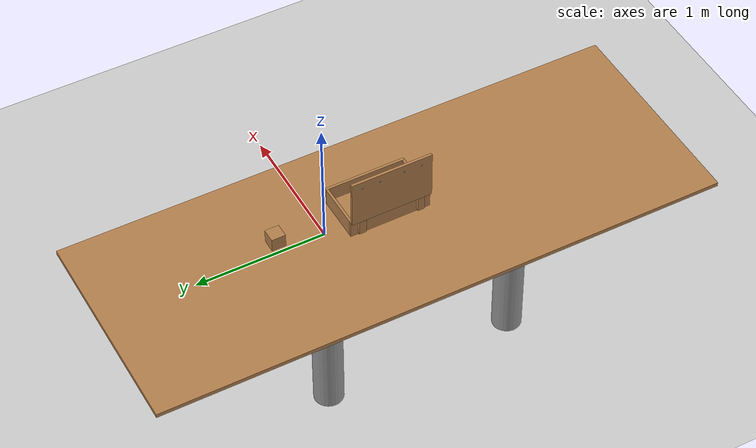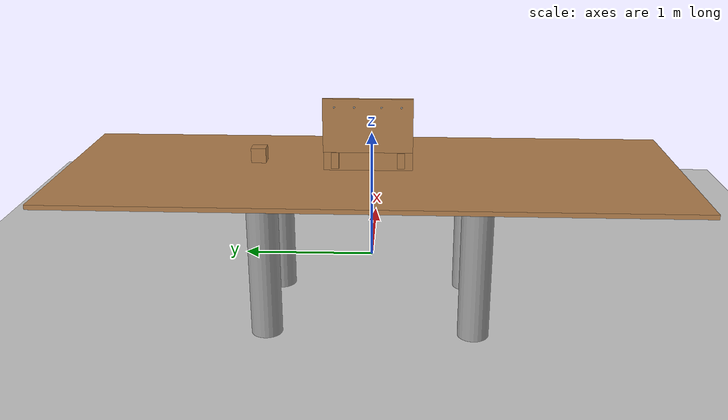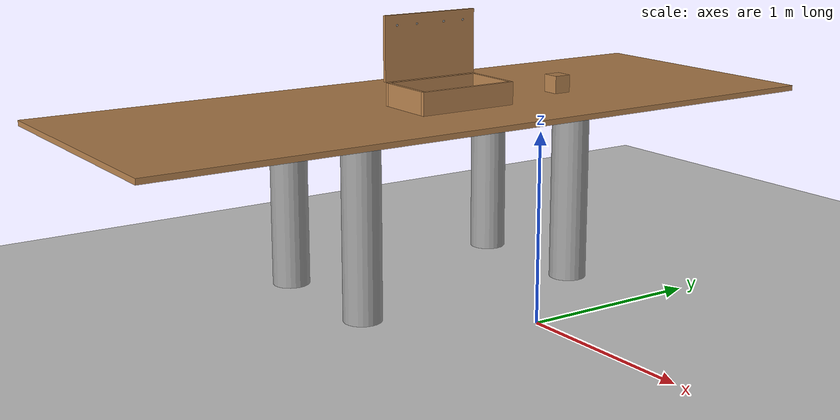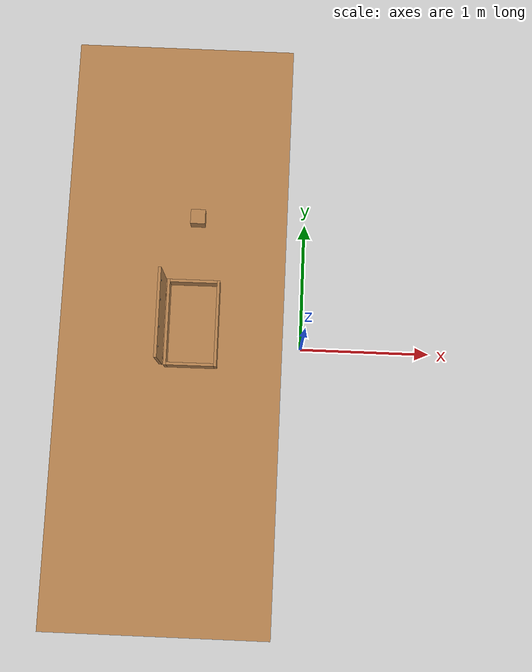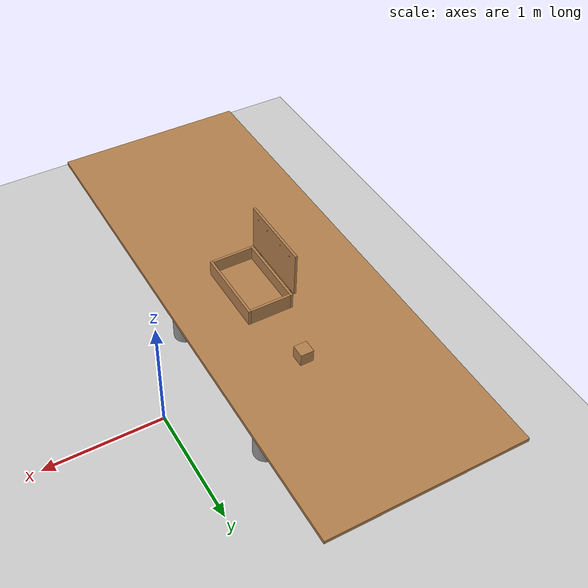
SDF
<sdf version="1.6">
 <world name="default">
  <scene><ambient>0.6 0.6 0.6 1</ambient><background>0.25 0.25 0.25 1</background><shadows>0</shadows></scene>
  <light name="sun" type="directional">
   <pose>0 0 10 0 -0 0</pose>
   <diffuse>0.8 0.8 0.8 1</diffuse>
   <specular>0.2 0.2 0.2 1</specular>
   <attenuation>
    <range>1000</range>
    <constant>0.9</constant>
    <linear>0.01</linear>
    <quadratic>0.001</quadratic>
   </attenuation>
   <direction>-0.5 0.1 -0.9</direction>
  </light>
  <model name="ground_plane">
   <static>1</static>
   <link name="link">
    <collision name="collision">
     <geometry><plane><normal>0 0 1</normal><size>100 100</size></plane></geometry>
     <surface>
      <contact><collide_bitmask>65535</collide_bitmask></contact>
      <friction><ode><mu>100</mu><mu2>50</mu2></ode></friction>
     </surface>
    </collision>
    <visual name="visual">
     <cast_shadows>0</cast_shadows>
     <geometry><plane><normal>0 0 1</normal><size>100 100</size></plane></geometry>
     <material>
      <script><uri>file://media/materials/scripts/gazebo.material</uri><name>Gazebo/Grey</name></script>
     </material>
    </visual>
   </link>
  </model>
  <gravity>0 0 -9.8</gravity>
  <physics name="default_physics" default="0" type="ode">
   <real_time_update_rate>5000</real_time_update_rate>
   <max_step_size>0.001</max_step_size>
   <real_time_factor>1</real_time_factor>
   <ode>
    <solver>
     <type>quick</type>
     <iters>150</iters>
     <precon_iters>0</precon_iters>
     <sor>1.4</sor>
     <use_dynamic_moi_rescaling>1</use_dynamic_moi_rescaling>
    </solver>
    <constraints>
     <cfm>1e-05</cfm>
     <erp>0.2</erp>
     <contact_max_correcting_vel>2000</contact_max_correcting_vel>
     <contact_surface_layer>0.01</contact_surface_layer>
    </constraints>
   </ode>
  </physics>
  <scene><ambient>0.4 0.4 0.4 1</ambient><background>0.7 0.7 0.7 1</background><shadows>1</shadows></scene>
  <magnetic_field>6e-06 2.3e-05 -4.2e-05</magnetic_field>
  <atmosphere type="adiabatic"/>
  <audio><device>default</device></audio>
  <spherical_coordinates>
   <surface_model>EARTH_WGS84</surface_model>
   <latitude_deg>0</latitude_deg>
   <longitude_deg>0</longitude_deg>
   <elevation>0</elevation>
   <heading_deg>0</heading_deg>
  </spherical_coordinates>
  <model name="table">
   <link name="link">
    <inertial>
     <inertia><ixx>0</ixx><ixy>0</ixy><ixz>0</ixz><iyy>0</iyy><iyz>0</iyz><izz>0</izz></inertia>
     <mass>0</mass>
    </inertial>
    <pose>-1.13775 0.614597 0 0 -0 0</pose>
    <visual name="visual1">
     <pose>0 0 1 0 -0 0</pose>
     <geometry><box><size>4.06235 1.52268 0.03</size></box></geometry>
     <material>
      <script><uri>file://media/materials/scripts/gazebo.material</uri><name>Gazebo/Wood</name></script>
     </material>
    </visual>
    <visual name="back_left_leg">
     <pose>-0.68 0.38 0.5 0 -0 0</pose>
     <geometry><cylinder><radius>0.102749</radius><length>1</length></cylinder></geometry>
     <material>
      <script><uri>file://media/materials/scripts/gazebo.material</uri><name>Gazebo/Grey</name></script>
     </material>
    </visual>
    <visual name="front_left_leg">
     <pose>0.68 0.38 0.5 0 -0 0</pose>
     <geometry><cylinder><radius>0.102749</radius><length>1</length></cylinder></geometry>
     <material>
      <script><uri>file://media/materials/scripts/gazebo.material</uri><name>Gazebo/Grey</name></script>
     </material>
    </visual>
    <visual name="front_right_leg">
     <pose>0.68 -0.38 0.5 0 -0 0</pose>
     <geometry><cylinder><radius>0.102749</radius><length>1</length></cylinder></geometry>
     <material>
      <script><uri>file://media/materials/scripts/gazebo.material</uri><name>Gazebo/Grey</name></script>
     </material>
    </visual>
    <visual name="back_right_leg">
     <pose>-0.68 -0.38 0.5 0 -0 0</pose>
     <geometry><cylinder><radius>0.102749</radius><length>1</length></cylinder></geometry>
     <material>
      <script><uri>file://media/materials/scripts/gazebo.material</uri><name>Gazebo/Grey</name></script>
     </material>
    </visual>
    <collision name="surface">
     <pose>0 0 1 0 -0 0</pose>
     <geometry><box><size>4.06235 1.52268 0.03</size></box></geometry>
     <surface>
      <friction>
       <ode><mu>0.6</mu><mu2>0.6</mu2><fdir1>0 0 0</fdir1><slip1>0</slip1><slip2>0</slip2></ode>
       <torsional>
        <coefficient>1</coefficient>
        <patch_radius>0</patch_radius>
        <surface_radius>0</surface_radius>
        <use_patch_radius>1</use_patch_radius>
        <ode><slip>0</slip></ode>
       </torsional>
      </friction>
      <bounce><restitution_coefficient>0</restitution_coefficient><threshold>1e+06</threshold></bounce>
      <contact>
       <collide_without_contact>0</collide_without_contact>
       <collide_without_contact_bitmask>1</collide_without_contact_bitmask>
       <collide_bitmask>1</collide_bitmask>
       <ode>
        <soft_cfm>0</soft_cfm>
        <soft_erp>0.2</soft_erp>
        <kp>1e+13</kp>
        <kd>1</kd>
        <max_vel>0.01</max_vel>
        <min_depth>0</min_depth>
       </ode>
       <bullet>
        <split_impulse>1</split_impulse>
        <split_impulse_penetration_threshold>-0.01</split_impulse_penetration_threshold>
        <soft_cfm>0</soft_cfm>
        <soft_erp>0.2</soft_erp>
        <kp>1e+13</kp>
        <kd>1</kd>
       </bullet>
      </contact>
     </surface>
    </collision>
    <collision name="front_left_leg">
     <pose>0.68 0.38 0.5 0 -0 0</pose>
     <geometry><cylinder><radius>0.102749</radius><length>1</length></cylinder></geometry>
     <surface>
      <friction>
       <ode><mu>1</mu><mu2>1</mu2><fdir1>0 0 0</fdir1><slip1>0</slip1><slip2>0</slip2></ode>
       <torsional>
        <coefficient>1</coefficient>
        <patch_radius>0</patch_radius>
        <surface_radius>0</surface_radius>
        <use_patch_radius>1</use_patch_radius>
        <ode><slip>0</slip></ode>
       </torsional>
      </friction>
      <bounce><restitution_coefficient>0</restitution_coefficient><threshold>1e+06</threshold></bounce>
      <contact>
       <collide_without_contact>0</collide_without_contact>
       <collide_without_contact_bitmask>1</collide_without_contact_bitmask>
       <collide_bitmask>1</collide_bitmask>
       <ode>
        <soft_cfm>0</soft_cfm>
        <soft_erp>0.2</soft_erp>
        <kp>1e+13</kp>
        <kd>1</kd>
        <max_vel>0.01</max_vel>
        <min_depth>0</min_depth>
       </ode>
       <bullet>
        <split_impulse>1</split_impulse>
        <split_impulse_penetration_threshold>-0.01</split_impulse_penetration_threshold>
        <soft_cfm>0</soft_cfm>
        <soft_erp>0.2</soft_erp>
        <kp>1e+13</kp>
        <kd>1</kd>
       </bullet>
      </contact>
     </surface>
    </collision>
    <collision name="front_right_leg">
     <pose>0.68 -0.38 0.5 0 -0 0</pose>
     <geometry><cylinder><radius>0.102749</radius><length>1</length></cylinder></geometry>
     <surface>
      <friction>
       <ode><mu>1</mu><mu2>1</mu2><fdir1>0 0 0</fdir1><slip1>0</slip1><slip2>0</slip2></ode>
       <torsional>
        <coefficient>1</coefficient>
        <patch_radius>0</patch_radius>
        <surface_radius>0</surface_radius>
        <use_patch_radius>1</use_patch_radius>
        <ode><slip>0</slip></ode>
       </torsional>
      </friction>
      <bounce><restitution_coefficient>0</restitution_coefficient><threshold>1e+06</threshold></bounce>
      <contact>
       <collide_without_contact>0</collide_without_contact>
       <collide_without_contact_bitmask>1</collide_without_contact_bitmask>
       <collide_bitmask>1</collide_bitmask>
       <ode>
        <soft_cfm>0</soft_cfm>
        <soft_erp>0.2</soft_erp>
        <kp>1e+13</kp>
        <kd>1</kd>
        <max_vel>0.01</max_vel>
        <min_depth>0</min_depth>
       </ode>
       <bullet>
        <split_impulse>1</split_impulse>
        <split_impulse_penetration_threshold>-0.01</split_impulse_penetration_threshold>
        <soft_cfm>0</soft_cfm>
        <soft_erp>0.2</soft_erp>
        <kp>1e+13</kp>
        <kd>1</kd>
       </bullet>
      </contact>
     </surface>
    </collision>
    <collision name="back_right_leg">
     <pose>-0.68 -0.38 0.5 0 -0 0</pose>
     <geometry><cylinder><radius>0.102749</radius><length>1</length></cylinder></geometry>
     <surface>
      <friction>
       <ode><mu>1</mu><mu2>1</mu2><fdir1>0 0 0</fdir1><slip1>0</slip1><slip2>0</slip2></ode>
       <torsional>
        <coefficient>1</coefficient>
        <patch_radius>0</patch_radius>
        <surface_radius>0</surface_radius>
        <use_patch_radius>1</use_patch_radius>
        <ode><slip>0</slip></ode>
       </torsional>
      </friction>
      <bounce><restitution_coefficient>0</restitution_coefficient><threshold>1e+06</threshold></bounce>
      <contact>
       <collide_without_contact>0</collide_without_contact>
       <collide_without_contact_bitmask>1</collide_without_contact_bitmask>
       <collide_bitmask>1</collide_bitmask>
       <ode>
        <soft_cfm>0</soft_cfm>
        <soft_erp>0.2</soft_erp>
        <kp>1e+13</kp>
        <kd>1</kd>
        <max_vel>0.01</max_vel>
        <min_depth>0</min_depth>
       </ode>
       <bullet>
        <split_impulse>1</split_impulse>
        <split_impulse_penetration_threshold>-0.01</split_impulse_penetration_threshold>
        <soft_cfm>0</soft_cfm>
        <soft_erp>0.2</soft_erp>
        <kp>1e+13</kp>
        <kd>1</kd>
       </bullet>
      </contact>
     </surface>
    </collision>
    <collision name="back_left_leg">
     <pose>-0.68 0.38 0.5 0 -0 0</pose>
     <geometry><cylinder><radius>0.102749</radius><length>1</length></cylinder></geometry>
     <surface>
      <friction>
       <ode><mu>1</mu><mu2>1</mu2><fdir1>0 0 0</fdir1><slip1>0</slip1><slip2>0</slip2></ode>
       <torsional>
        <coefficient>1</coefficient>
        <patch_radius>0</patch_radius>
        <surface_radius>0</surface_radius>
        <use_patch_radius>1</use_patch_radius>
        <ode><slip>0</slip></ode>
       </torsional>
      </friction>
      <bounce><restitution_coefficient>0</restitution_coefficient><threshold>1e+06</threshold></bounce>
      <contact>
       <collide_without_contact>0</collide_without_contact>
       <collide_without_contact_bitmask>1</collide_without_contact_bitmask>
       <collide_bitmask>1</collide_bitmask>
       <ode>
        <soft_cfm>0</soft_cfm>
        <soft_erp>0.2</soft_erp>
        <kp>1e+13</kp>
        <kd>1</kd>
        <max_vel>0.01</max_vel>
        <min_depth>0</min_depth>
       </ode>
       <bullet>
        <split_impulse>1</split_impulse>
        <split_impulse_penetration_threshold>-0.01</split_impulse_penetration_threshold>
        <soft_cfm>0</soft_cfm>
        <soft_erp>0.2</soft_erp>
        <kp>1e+13</kp>
        <kd>1</kd>
       </bullet>
      </contact>
     </surface>
    </collision>
   </link>
   <static>1</static>
   <pose>-1.53214 -1.17403 0 0 0 -1.57221</pose>
  </model>
  <model name="wooden_case">
   <link name="base">
    <pose>0 0 0.024 0 -0 0</pose>
    <inertial>
     <pose>-0.022184 0 0.171592 0 -0 0</pose>
     <mass>3.96264</mass>
     <inertia>
      <ixx>0.213536</ixx>
      <ixy>0</ixy>
      <ixz>0.000779377</ixz>
      <iyy>0.0708943</iyy>
      <iyz>0</iyz>
      <izz>0.154604</izz>
     </inertia>
    </inertial>
    <collision name="collision_back">
     <pose>-0.053975 0 0.1778 0 -0 0</pose>
     <geometry><box><size>0.01905 0.5461 0.3175</size></box></geometry>
     <surface>
      <contact>
       <poissons_ratio>0.347</poissons_ratio>
       <elastic_modulus>8.8e+09</elastic_modulus>
       <ode><kp>100000</kp><kd>100</kd><max_vel>100</max_vel><min_depth>0.001</min_depth></ode>
      </contact>
      <friction>
       <torsional>
        <coefficient>1</coefficient>
        <use_patch_radius>0</use_patch_radius>
        <surface_radius>0.01</surface_radius>
       </torsional>
      </friction>
     </surface>
    </collision>
    <visual name="visual_back">
     <pose>-0.053975 0 0.1778 0 -0 0</pose>
     <geometry><box><size>0.01905 0.5461 0.3175</size></box></geometry>
     <material>
      <script><uri>file://media/materials/scripts/gazebo.material</uri><name>Gazebo/Wood</name></script>
     </material>
    </visual>
    <collision name="collision_bottom">
     <pose>0 0 0.009525 0 -0 0</pose>
     <geometry><box><size>0.127 0.5842 0.01905</size></box></geometry>
     <surface>
      <contact>
       <poissons_ratio>0.347</poissons_ratio>
       <elastic_modulus>8.8e+09</elastic_modulus>
       <ode><kp>100000</kp><kd>100</kd><max_vel>100</max_vel><min_depth>0.001</min_depth></ode>
      </contact>
      <friction>
       <torsional>
        <coefficient>1</coefficient>
        <use_patch_radius>0</use_patch_radius>
        <surface_radius>0.01</surface_radius>
       </torsional>
      </friction>
     </surface>
    </collision>
    <visual name="visual_bottom">
     <pose>0 0 0.009525 0 -0 0</pose>
     <geometry><box><size>0.127 0.5842 0.01905</size></box></geometry>
     <material>
      <script><uri>file://media/materials/scripts/gazebo.material</uri><name>Gazebo/Wood</name></script>
     </material>
    </visual>
    <collision name="collision_top">
     <pose>0 0 0.346075 0 -0 0</pose>
     <geometry><box><size>0.127 0.5842 0.01905</size></box></geometry>
     <surface>
      <contact>
       <poissons_ratio>0.347</poissons_ratio>
       <elastic_modulus>8.8e+09</elastic_modulus>
       <ode><kp>100000</kp><kd>100</kd><max_vel>100</max_vel><min_depth>0.001</min_depth></ode>
      </contact>
      <friction>
       <torsional>
        <coefficient>1</coefficient>
        <use_patch_radius>0</use_patch_radius>
        <surface_radius>0.01</surface_radius>
       </torsional>
      </friction>
     </surface>
    </collision>
    <visual name="visual_top">
     <pose>0 0 0.346075 0 -0 0</pose>
     <geometry><box><size>0.127 0.5842 0.01905</size></box></geometry>
     <material>
      <script><uri>file://media/materials/scripts/gazebo.material</uri><name>Gazebo/Wood</name></script>
     </material>
    </visual>
    <collision name="collision_left">
     <pose>0 -0.282575 0.1778 0 -0 0</pose>
     <geometry><box><size>0.127 0.01905 0.3175</size></box></geometry>
     <surface>
      <contact>
       <poissons_ratio>0.347</poissons_ratio>
       <elastic_modulus>8.8e+09</elastic_modulus>
       <ode><kp>100000</kp><kd>100</kd><max_vel>100</max_vel><min_depth>0.001</min_depth></ode>
      </contact>
      <friction>
       <torsional>
        <coefficient>1</coefficient>
        <use_patch_radius>0</use_patch_radius>
        <surface_radius>0.01</surface_radius>
       </torsional>
      </friction>
     </surface>
    </collision>
    <visual name="visual_left">
     <pose>0 -0.282575 0.1778 0 -0 0</pose>
     <geometry><box><size>0.127 0.01905 0.3175</size></box></geometry>
     <material>
      <script><uri>file://media/materials/scripts/gazebo.material</uri><name>Gazebo/Wood</name></script>
     </material>
    </visual>
    <collision name="collision_right">
     <pose>0 0.282575 0.1778 0 -0 0</pose>
     <geometry><box><size>0.127 0.01905 0.3175</size></box></geometry>
     <surface>
      <contact>
       <poissons_ratio>0.347</poissons_ratio>
       <elastic_modulus>8.8e+09</elastic_modulus>
       <ode><kp>100000</kp><kd>100</kd><max_vel>100</max_vel><min_depth>0.001</min_depth></ode>
      </contact>
      <friction>
       <torsional>
        <coefficient>1</coefficient>
        <use_patch_radius>0</use_patch_radius>
        <surface_radius>0.01</surface_radius>
       </torsional>
      </friction>
     </surface>
    </collision>
    <visual name="visual_right">
     <pose>0 0.282575 0.1778 0 -0 0</pose>
     <geometry><box><size>0.127 0.01905 0.3175</size></box></geometry>
     <material>
      <script><uri>file://media/materials/scripts/gazebo.material</uri><name>Gazebo/Wood</name></script>
     </material>
    </visual>
    <collision name="collision_block_left">
     <pose>0.0095 -0.2151 -0.012 0 -0 0</pose>
     <geometry><box><size>0.108 0.05 0.024</size></box></geometry>
     <surface>
      <contact>
       <poissons_ratio>0.347</poissons_ratio>
       <elastic_modulus>8.8e+09</elastic_modulus>
       <ode><kp>100000</kp><kd>100</kd><max_vel>100</max_vel><min_depth>0.001</min_depth></ode>
      </contact>
      <friction>
       <torsional>
        <coefficient>1</coefficient>
        <use_patch_radius>0</use_patch_radius>
        <surface_radius>0.01</surface_radius>
       </torsional>
      </friction>
     </surface>
    </collision>
    <visual name="visual_block_left">
     <pose>0.0095 -0.2151 -0.012 0 -0 0</pose>
     <geometry><box><size>0.108 0.05 0.024</size></box></geometry>
     <material>
      <script><uri>file://media/materials/scripts/gazebo.material</uri><name>Gazebo/Wood</name></script>
     </material>
    </visual>
    <collision name="collision_block_right">
     <pose>0.0095 0.2151 -0.012 0 -0 0</pose>
     <geometry><box><size>0.108 0.05 0.024</size></box></geometry>
     <surface>
      <contact>
       <poissons_ratio>0.347</poissons_ratio>
       <elastic_modulus>8.8e+09</elastic_modulus>
       <ode><kp>100000</kp><kd>100</kd><max_vel>100</max_vel><min_depth>0.001</min_depth></ode>
      </contact>
      <friction>
       <torsional>
        <coefficient>1</coefficient>
        <use_patch_radius>0</use_patch_radius>
        <surface_radius>0.01</surface_radius>
       </torsional>
      </friction>
     </surface>
    </collision>
    <visual name="visual_block_right">
     <pose>0.0095 0.2151 -0.012 0 -0 0</pose>
     <geometry><box><size>0.108 0.05 0.024</size></box></geometry>
     <material>
      <script><uri>file://media/materials/scripts/gazebo.material</uri><name>Gazebo/Wood</name></script>
     </material>
    </visual>
   </link>
   <link name="lid">
    <pose>0.243775 0 0.009525 0 -0 0</pose>
    <inertial>
     <mass>1.97874</mass>
     <inertia>
      <ixx>0.0563367</ixx>
      <ixy>0</ixy>
      <ixz>0</ixz>
      <iyy>0.020911</iyy>
      <iyz>0</iyz>
      <izz>0.0771281</izz>
     </inertia>
    </inertial>
    <collision name="collision">
     <geometry><box><size>0.3556 0.5842 0.01905</size></box></geometry>
     <surface>
      <contact>
       <poissons_ratio>0.347</poissons_ratio>
       <elastic_modulus>8.8e+09</elastic_modulus>
       <ode><kp>100000</kp><kd>100</kd><max_vel>100</max_vel><min_depth>0.001</min_depth></ode>
      </contact>
      <friction>
       <torsional>
        <coefficient>1</coefficient>
        <use_patch_radius>0</use_patch_radius>
        <surface_radius>0.01</surface_radius>
       </torsional>
      </friction>
     </surface>
    </collision>
    <visual name="visual">
     <geometry><box><size>0.3556 0.5842 0.01905</size></box></geometry>
     <material>
      <script><uri>file://media/materials/scripts/gazebo.material</uri><name>Gazebo/Wood</name></script>
     </material>
    </visual>
    <visual name="tee_nut_1">
     <pose>0.122 -0.216 0 0 -0 0</pose>
     <geometry><cylinder><radius>0.00635</radius><length>0.0192405</length></cylinder></geometry>
     <material>
      <script><uri>file://media/materials/scripts/gazebo.material</uri><name>Gazebo/Grey</name></script>
     </material>
    </visual>
    <visual name="tee_nut_2">
     <pose>0.122 -0.088 0 0 -0 0</pose>
     <geometry><cylinder><radius>0.00635</radius><length>0.0192405</length></cylinder></geometry>
     <material>
      <script><uri>file://media/materials/scripts/gazebo.material</uri><name>Gazebo/Grey</name></script>
     </material>
    </visual>
    <visual name="tee_nut_3">
     <pose>0.122 0.088 0 0 -0 0</pose>
     <geometry><cylinder><radius>0.00635</radius><length>0.0192405</length></cylinder></geometry>
     <material>
      <script><uri>file://media/materials/scripts/gazebo.material</uri><name>Gazebo/Grey</name></script>
     </material>
    </visual>
    <visual name="tee_nut_4">
     <pose>0.122 0.216 0 0 -0 0</pose>
     <geometry><cylinder><radius>0.00635</radius><length>0.0192405</length></cylinder></geometry>
     <material>
      <script><uri>file://media/materials/scripts/gazebo.material</uri><name>Gazebo/Grey</name></script>
     </material>
    </visual>
   </link>
   <joint name="lid_hinge" type="revolute">
    <pose>-0.1778 0 0.01905 0 -0 0</pose>
    <parent>base</parent>
    <child>lid</child>
    <axis>
     <xyz>0 1 0</xyz>
     <limit><upper>0.523599</upper><lower>-1.5708</lower></limit>
     <use_parent_model_frame>0</use_parent_model_frame>
     <dynamics><spring_reference>0</spring_reference><spring_stiffness>0</spring_stiffness></dynamics>
    </axis>
   </joint>
   <pose>-0.970457 -0.012837 1.07745 0 -1.57069 -3.13753</pose>
  </model>
  <model name="wood_cube_10cm">
   <link name="link">
    <pose>0 0 0.05 0 -0 0</pose>
    <inertial>
     <mass>0.5167</mass>
     <inertia>
      <ixx>0.000861167</ixx>
      <ixy>0</ixy>
      <ixz>0</ixz>
      <iyy>0.000861167</iyy>
      <iyz>0</iyz>
      <izz>0.000861167</izz>
     </inertia>
    </inertial>
    <collision name="collision">
     <geometry><box><size>0.1 0.1 0.1</size></box></geometry>
     <surface>
      <contact>
       <poissons_ratio>0.347</poissons_ratio>
       <elastic_modulus>8.8e+09</elastic_modulus>
       <ode><kp>100000</kp><kd>100</kd><max_vel>100</max_vel><min_depth>0.001</min_depth></ode>
      </contact>
      <friction>
       <torsional>
        <coefficient>1</coefficient>
        <use_patch_radius>0</use_patch_radius>
        <surface_radius>0.01</surface_radius>
       </torsional>
      </friction>
     </surface>
    </collision>
    <visual name="visual">
     <geometry><box><size>0.1 0.1 0.1</size></box></geometry>
     <material>
      <script><uri>file://media/materials/scripts/gazebo.material</uri><name>Gazebo/Wood</name></script>
     </material>
    </visual>
   </link>
   <pose>-0.716211 0.730216 1.06399 3.14159 -1.57079 3.14159</pose>
  </model>
 </world>
</sdf>
